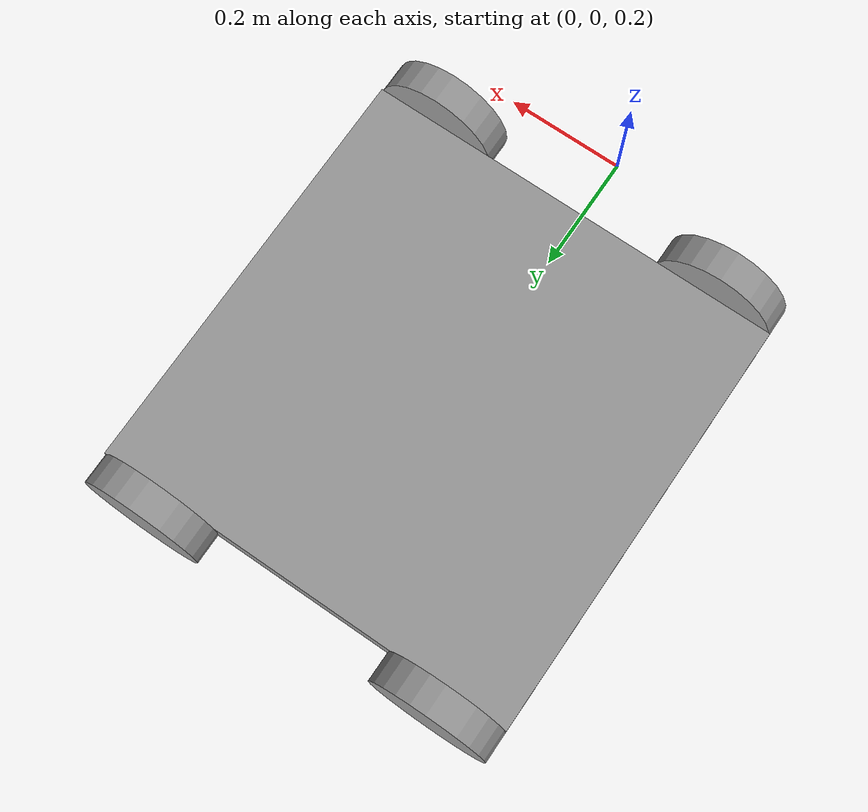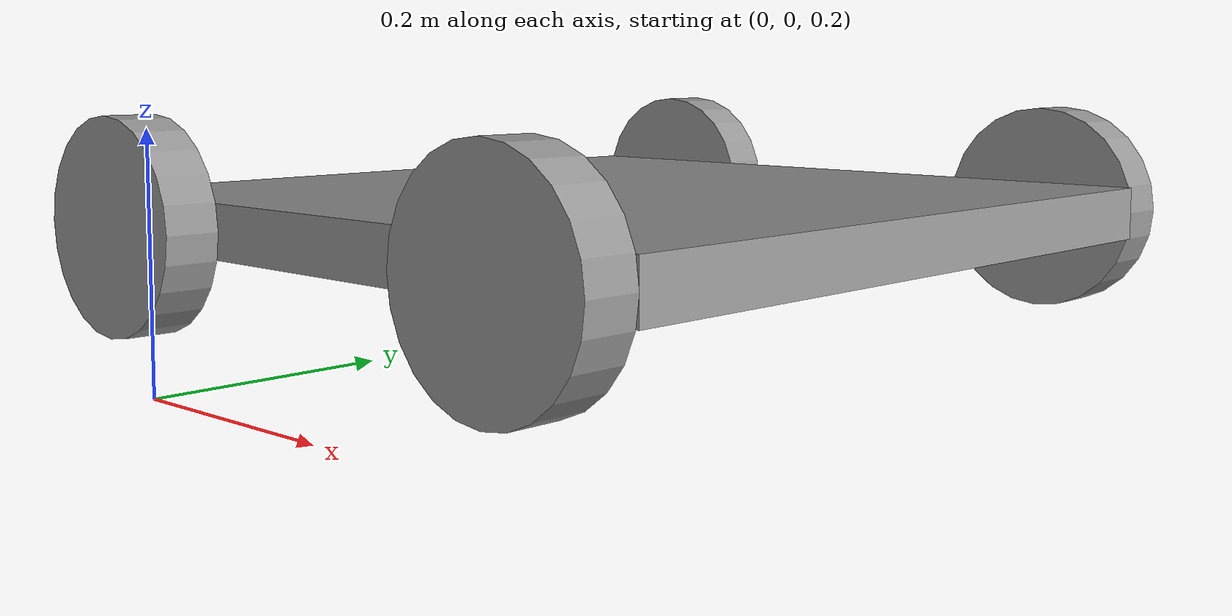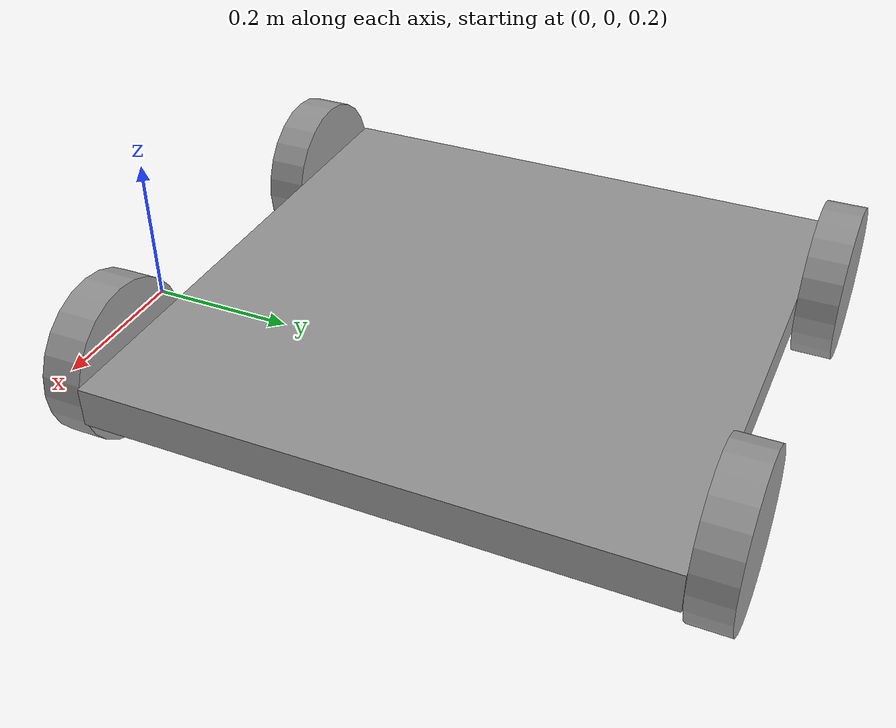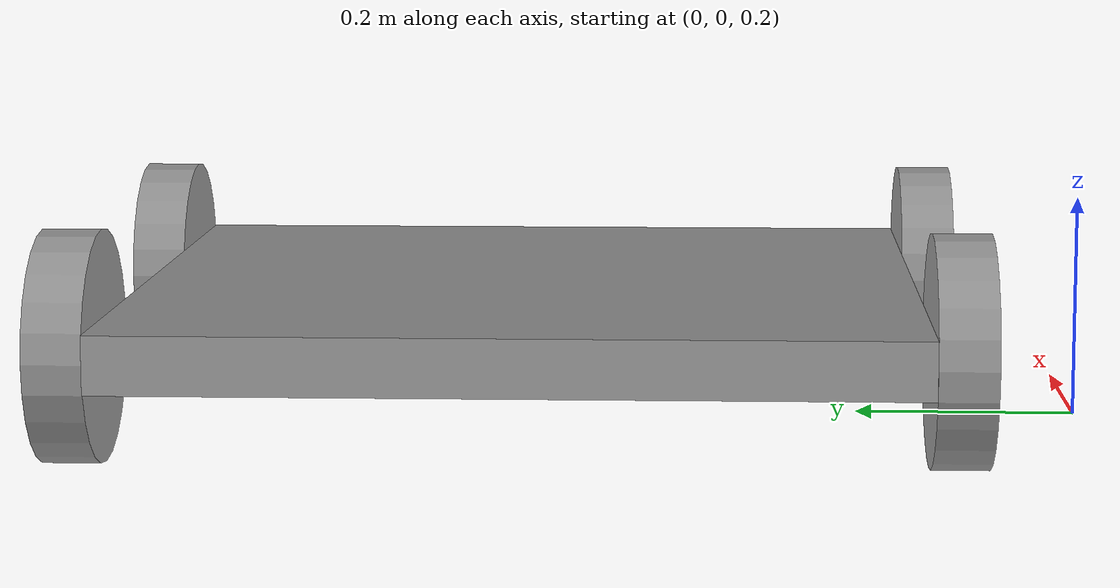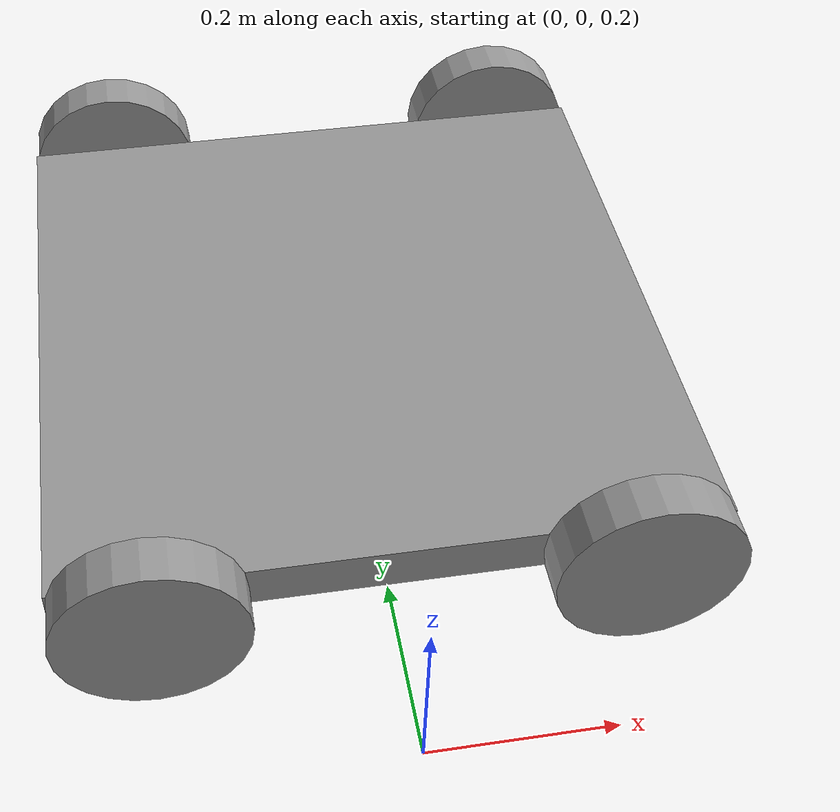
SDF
<?xml version='1.0'?>
<sdf version='1.6'>
  <model name='Robot'>
    <link name='link_2'>
      <inertial>
        <mass>1</mass>
        <inertia>
          <ixx>0.166667</ixx>
          <ixy>0</ixy>
          <ixz>0</ixz>
          <iyy>0.166667</iyy>
          <iyz>0</iyz>
          <izz>0.166667</izz>
        </inertia>
        <pose frame=''>0 0 0 0 -0 0</pose>
      </inertial>
      <pose frame=''>0 0.5 0.3 0 -0 0</pose>
      <gravity>1</gravity>
      <self_collide>0</self_collide>
      <kinematic>0</kinematic>
      <enable_wind>0</enable_wind>
      <visual name='visual'>
        <pose frame=''>0 0 0 0 -0 0</pose>
        <geometry>
          <box>
            <size>0.7 0.7 0.05</size>
          </box>
        </geometry>
        <material>
          <lighting>1</lighting>
          <script>
            <uri>file://media/materials/scripts/gazebo.material</uri>
            <name>Gazebo/Grey</name>
          </script>
          <shader type='vertex'>
            <normal_map>__default__</normal_map>
          </shader>
          <ambient>0.3 0.3 0.3 1</ambient>
          <diffuse>0.7 0.7 0.7 1</diffuse>
          <specular>0.01 0.01 0.01 1</specular>
          <emissive>0 0 0 1</emissive>
        </material>
        <transparency>0</transparency>
        <cast_shadows>1</cast_shadows>
      </visual>
      <collision name='collision'>
        <laser_retro>0</laser_retro>
        <max_contacts>10</max_contacts>
        <pose frame=''>0 0 0 0 -0 0</pose>
        <geometry>
          <box>
            <size>0.7 0.7 0.05</size>
          </box>
        </geometry>
        <surface>
          <friction>
            <ode>
              <mu>1</mu>
              <mu2>1</mu2>
              <fdir1>0 0 0</fdir1>
              <slip1>0</slip1>
              <slip2>0</slip2>
            </ode>
            <torsional>
              <coefficient>1</coefficient>
              <patch_radius>0</patch_radius>
              <surface_radius>0</surface_radius>
              <use_patch_radius>1</use_patch_radius>
              <ode>
                <slip>0</slip>
              </ode>
            </torsional>
          </friction>
          <bounce>
            <restitution_coefficient>0</restitution_coefficient>
            <threshold>1e+06</threshold>
          </bounce>
          <contact>
            <collide_without_contact>0</collide_without_contact>
            <collide_without_contact_bitmask>1</collide_without_contact_bitmask>
            <collide_bitmask>1</collide_bitmask>
            <ode>
              <soft_cfm>0</soft_cfm>
              <soft_erp>0.2</soft_erp>
              <kp>1e+13</kp>
              <kd>1</kd>
              <max_vel>0.01</max_vel>
              <min_depth>0</min_depth>
            </ode>
            <bullet>
              <split_impulse>1</split_impulse>
              <split_impulse_penetration_threshold>-0.01</split_impulse_penetration_threshold>
              <soft_cfm>0</soft_cfm>
              <soft_erp>0.2</soft_erp>
              <kp>1e+13</kp>
              <kd>1</kd>
            </bullet>
          </contact>
        </surface>
      </collision>
    </link>
    <link name='link_0'>
      <inertial>
        <mass>1</mass>
        <inertia>
          <ixx>0.145833</ixx>
          <ixy>0</ixy>
          <ixz>0</ixz>
          <iyy>0.145833</iyy>
          <iyz>0</iyz>
          <izz>0.125</izz>
        </inertia>
        <pose frame=''>0 0 0 0 -0 0</pose>
      </inertial>
      <pose frame=''>-0.250189 0.875048 0.300006 8e-06 -0 0.000261</pose>
      <gravity>1</gravity>
      <self_collide>0</self_collide>
      <kinematic>0</kinematic>
      <enable_wind>0</enable_wind>
      <visual name='visual'>
        <pose frame=''>0 0 0 1.571 -0 0</pose>
        <geometry>
          <cylinder>
            <radius>0.1</radius>
            <length>0.05</length>
          </cylinder>
        </geometry>
        <material>
          <lighting>1</lighting>
          <script>
            <uri>file://media/materials/scripts/gazebo.material</uri>
            <name>Gazebo/Grey</name>
          </script>
          <shader type='vertex'>
            <normal_map>__default__</normal_map>
          </shader>
          <ambient>0.3 0.3 0.3 1</ambient>
          <diffuse>0.7 0.7 0.7 1</diffuse>
          <specular>0.01 0.01 0.01 1</specular>
          <emissive>0 0 0 1</emissive>
        </material>
        <transparency>0</transparency>
        <cast_shadows>1</cast_shadows>
      </visual>
      <collision name='collision'>
        <laser_retro>0</laser_retro>
        <max_contacts>10</max_contacts>
        <pose frame=''>0 0 0 1.571 -0 0</pose>
        <geometry>
          <cylinder>
            <radius>0.1</radius>
            <length>0.05</length>
          </cylinder>
        </geometry>
        <surface>
          <friction>
            <ode>
              <mu>1</mu>
              <mu2>1</mu2>
              <fdir1>0 0 0</fdir1>
              <slip1>0</slip1>
              <slip2>0</slip2>
            </ode>
            <torsional>
              <coefficient>1</coefficient>
              <patch_radius>0</patch_radius>
              <surface_radius>0</surface_radius>
              <use_patch_radius>1</use_patch_radius>
              <ode>
                <slip>0</slip>
              </ode>
            </torsional>
          </friction>
          <bounce>
            <restitution_coefficient>0</restitution_coefficient>
            <threshold>1e+06</threshold>
          </bounce>
          <contact>
            <collide_without_contact>0</collide_without_contact>
            <collide_without_contact_bitmask>1</collide_without_contact_bitmask>
            <collide_bitmask>1</collide_bitmask>
            <ode>
              <soft_cfm>0</soft_cfm>
              <soft_erp>0.2</soft_erp>
              <kp>1e+13</kp>
              <kd>1</kd>
              <max_vel>0.01</max_vel>
              <min_depth>0</min_depth>
            </ode>
            <bullet>
              <split_impulse>1</split_impulse>
              <split_impulse_penetration_threshold>-0.01</split_impulse_penetration_threshold>
              <soft_cfm>0</soft_cfm>
              <soft_erp>0.2</soft_erp>
              <kp>1e+13</kp>
              <kd>1</kd>
            </bullet>
          </contact>
        </surface>
      </collision>
    </link>
    <link name='link_0_clone'>
      <inertial>
        <mass>1</mass>
        <inertia>
          <ixx>0.145833</ixx>
          <ixy>0</ixy>
          <ixz>0</ixz>
          <iyy>0.145833</iyy>
          <iyz>0</iyz>
          <izz>0.125</izz>
        </inertia>
        <pose frame=''>0 0 0 0 -0 0</pose>
      </inertial>
      <pose frame=''>-0.249987 0.124796 0.3 1.6e-05 -0 0.000522</pose>
      <gravity>1</gravity>
      <self_collide>0</self_collide>
      <kinematic>0</kinematic>
      <enable_wind>0</enable_wind>
      <visual name='visual'>
        <pose frame=''>0 0 0 1.571 -0 0</pose>
        <geometry>
          <cylinder>
            <radius>0.1</radius>
            <length>0.05</length>
          </cylinder>
        </geometry>
        <material>
          <lighting>1</lighting>
          <script>
            <uri>file://media/materials/scripts/gazebo.material</uri>
            <name>Gazebo/Grey</name>
          </script>
          <shader type='vertex'>
            <normal_map>__default__</normal_map>
          </shader>
          <ambient>0.3 0.3 0.3 1</ambient>
          <diffuse>0.7 0.7 0.7 1</diffuse>
          <specular>0.01 0.01 0.01 1</specular>
          <emissive>0 0 0 1</emissive>
        </material>
        <transparency>0</transparency>
        <cast_shadows>1</cast_shadows>
      </visual>
      <collision name='collision'>
        <laser_retro>0</laser_retro>
        <max_contacts>10</max_contacts>
        <pose frame=''>0 0 0 1.571 -0 0</pose>
        <geometry>
          <cylinder>
            <radius>0.1</radius>
            <length>0.05</length>
          </cylinder>
        </geometry>
        <surface>
          <friction>
            <ode>
              <mu>1</mu>
              <mu2>1</mu2>
              <fdir1>0 0 0</fdir1>
              <slip1>0</slip1>
              <slip2>0</slip2>
            </ode>
            <torsional>
              <coefficient>1</coefficient>
              <patch_radius>0</patch_radius>
              <surface_radius>0</surface_radius>
              <use_patch_radius>1</use_patch_radius>
              <ode>
                <slip>0</slip>
              </ode>
            </torsional>
          </friction>
          <bounce>
            <restitution_coefficient>0</restitution_coefficient>
            <threshold>1e+06</threshold>
          </bounce>
          <contact>
            <collide_without_contact>0</collide_without_contact>
            <collide_without_contact_bitmask>1</collide_without_contact_bitmask>
            <collide_bitmask>1</collide_bitmask>
            <ode>
              <soft_cfm>0</soft_cfm>
              <soft_erp>0.2</soft_erp>
              <kp>1e+13</kp>
              <kd>1</kd>
              <max_vel>0.01</max_vel>
              <min_depth>0</min_depth>
            </ode>
            <bullet>
              <split_impulse>1</split_impulse>
              <split_impulse_penetration_threshold>-0.01</split_impulse_penetration_threshold>
              <soft_cfm>0</soft_cfm>
              <soft_erp>0.2</soft_erp>
              <kp>1e+13</kp>
              <kd>1</kd>
            </bullet>
          </contact>
        </surface>
      </collision>
    </link>
    <link name='link_0_clone_0'>
      <inertial>
        <mass>1</mass>
        <inertia>
          <ixx>0.145833</ixx>
          <ixy>0</ixy>
          <ixz>0</ixz>
          <iyy>0.145833</iyy>
          <iyz>0</iyz>
          <izz>0.125</izz>
        </inertia>
        <pose frame=''>0 0 0 0 -0 0</pose>
      </inertial>
      <pose frame=''>0.249987 0.875204 0.3 1.6e-05 -0 0.000522</pose>
      <gravity>1</gravity>
      <self_collide>0</self_collide>
      <kinematic>0</kinematic>
      <enable_wind>0</enable_wind>
      <visual name='visual'>
        <pose frame=''>0 0 0 1.571 -0 0</pose>
        <geometry>
          <cylinder>
            <radius>0.1</radius>
            <length>0.05</length>
          </cylinder>
        </geometry>
        <material>
          <lighting>1</lighting>
          <script>
            <uri>file://media/materials/scripts/gazebo.material</uri>
            <name>Gazebo/Grey</name>
          </script>
          <shader type='vertex'>
            <normal_map>__default__</normal_map>
          </shader>
          <ambient>0.3 0.3 0.3 1</ambient>
          <diffuse>0.7 0.7 0.7 1</diffuse>
          <specular>0.01 0.01 0.01 1</specular>
          <emissive>0 0 0 1</emissive>
        </material>
        <transparency>0</transparency>
        <cast_shadows>1</cast_shadows>
      </visual>
      <collision name='collision'>
        <laser_retro>0</laser_retro>
        <max_contacts>10</max_contacts>
        <pose frame=''>0 0 0 1.571 -0 0</pose>
        <geometry>
          <cylinder>
            <radius>0.1</radius>
            <length>0.05</length>
          </cylinder>
        </geometry>
        <surface>
          <friction>
            <ode>
              <mu>1</mu>
              <mu2>1</mu2>
              <fdir1>0 0 0</fdir1>
              <slip1>0</slip1>
              <slip2>0</slip2>
            </ode>
            <torsional>
              <coefficient>1</coefficient>
              <patch_radius>0</patch_radius>
              <surface_radius>0</surface_radius>
              <use_patch_radius>1</use_patch_radius>
              <ode>
                <slip>0</slip>
              </ode>
            </torsional>
          </friction>
          <bounce>
            <restitution_coefficient>0</restitution_coefficient>
            <threshold>1e+06</threshold>
          </bounce>
          <contact>
            <collide_without_contact>0</collide_without_contact>
            <collide_without_contact_bitmask>1</collide_without_contact_bitmask>
            <collide_bitmask>1</collide_bitmask>
            <ode>
              <soft_cfm>0</soft_cfm>
              <soft_erp>0.2</soft_erp>
              <kp>1e+13</kp>
              <kd>1</kd>
              <max_vel>0.01</max_vel>
              <min_depth>0</min_depth>
            </ode>
            <bullet>
              <split_impulse>1</split_impulse>
              <split_impulse_penetration_threshold>-0.01</split_impulse_penetration_threshold>
              <soft_cfm>0</soft_cfm>
              <soft_erp>0.2</soft_erp>
              <kp>1e+13</kp>
              <kd>1</kd>
            </bullet>
          </contact>
        </surface>
      </collision>
    </link>
    <link name='link_0_clone_0_clone'>
      <inertial>
        <mass>1</mass>
        <inertia>
          <ixx>0.145833</ixx>
          <ixy>0</ixy>
          <ixz>0</ixz>
          <iyy>0.145833</iyy>
          <iyz>0</iyz>
          <izz>0.125</izz>
        </inertia>
        <pose frame=''>0 0 0 0 -0 0</pose>
      </inertial>
      <pose frame=''>0.250176 0.124899 0.3 2.4e-05 -0 0.000783</pose>
      <gravity>1</gravity>
      <self_collide>0</self_collide>
      <kinematic>0</kinematic>
      <enable_wind>0</enable_wind>
      <visual name='visual'>
        <pose frame=''>0 0 0 1.571 -0 0</pose>
        <geometry>
          <cylinder>
            <radius>0.1</radius>
            <length>0.05</length>
          </cylinder>
        </geometry>
        <material>
          <lighting>1</lighting>
          <script>
            <uri>file://media/materials/scripts/gazebo.material</uri>
            <name>Gazebo/Grey</name>
          </script>
          <shader type='vertex'>
            <normal_map>__default__</normal_map>
          </shader>
          <ambient>0.3 0.3 0.3 1</ambient>
          <diffuse>0.7 0.7 0.7 1</diffuse>
          <specular>0.01 0.01 0.01 1</specular>
          <emissive>0 0 0 1</emissive>
        </material>
        <transparency>0</transparency>
        <cast_shadows>1</cast_shadows>
      </visual>
      <collision name='collision'>
        <laser_retro>0</laser_retro>
        <max_contacts>10</max_contacts>
        <pose frame=''>0 0 0 1.571 -0 0</pose>
        <geometry>
          <cylinder>
            <radius>0.1</radius>
            <length>0.05</length>
          </cylinder>
        </geometry>
        <surface>
          <friction>
            <ode>
              <mu>1</mu>
              <mu2>1</mu2>
              <fdir1>0 0 0</fdir1>
              <slip1>0</slip1>
              <slip2>0</slip2>
            </ode>
            <torsional>
              <coefficient>1</coefficient>
              <patch_radius>0</patch_radius>
              <surface_radius>0</surface_radius>
              <use_patch_radius>1</use_patch_radius>
              <ode>
                <slip>0</slip>
              </ode>
            </torsional>
          </friction>
          <bounce>
            <restitution_coefficient>0</restitution_coefficient>
            <threshold>1e+06</threshold>
          </bounce>
          <contact>
            <collide_without_contact>0</collide_without_contact>
            <collide_without_contact_bitmask>1</collide_without_contact_bitmask>
            <collide_bitmask>1</collide_bitmask>
            <ode>
              <soft_cfm>0</soft_cfm>
              <soft_erp>0.2</soft_erp>
              <kp>1e+13</kp>
              <kd>1</kd>
              <max_vel>0.01</max_vel>
              <min_depth>0</min_depth>
            </ode>
            <bullet>
              <split_impulse>1</split_impulse>
              <split_impulse_penetration_threshold>-0.01</split_impulse_penetration_threshold>
              <soft_cfm>0</soft_cfm>
              <soft_erp>0.2</soft_erp>
              <kp>1e+13</kp>
              <kd>1</kd>
            </bullet>
          </contact>
        </surface>
      </collision>
    </link>
    <joint name='link_2_JOINT_10' type='revolute'>
      <parent>link_2</parent>
      <child>link_0_clone</child>
      <pose frame=''>0 0 0 0 -0 0</pose>
      <axis>
        <xyz>0 0 1</xyz>
        <use_parent_model_frame>0</use_parent_model_frame>
        <limit>
          <lower>-1.79769e+308</lower>
          <upper>1.79769e+308</upper>
          <effort>-1</effort>
          <velocity>-1</velocity>
        </limit>
        <dynamics>
          <spring_reference>0</spring_reference>
          <spring_stiffness>0</spring_stiffness>
          <damping>0</damping>
        </dynamics>
      </axis>
      <physics>
        <ode>
          <limit>
            <cfm>0</cfm>
            <erp>0.2</erp>
          </limit>
          <suspension>
            <cfm>0</cfm>
            <erp>0.2</erp>
          </suspension>
        </ode>
      </physics>
    </joint>
    <joint name='link_2_JOINT_1' type='revolute'>
      <parent>link_2</parent>
      <child>link_0</child>
      <pose frame=''>0 0 0 0 -0 0</pose>
      <axis>
        <xyz>0 0 1</xyz>
        <use_parent_model_frame>0</use_parent_model_frame>
        <limit>
          <lower>-1.79769e+308</lower>
          <upper>1.79769e+308</upper>
          <effort>-1</effort>
          <velocity>-1</velocity>
        </limit>
        <dynamics>
          <spring_reference>0</spring_reference>
          <spring_stiffness>0</spring_stiffness>
          <damping>0</damping>
          <friction>0</friction>
        </dynamics>
      </axis>
      <physics>
        <ode>
          <limit>
            <cfm>0</cfm>
            <erp>0.2</erp>
          </limit>
          <suspension>
            <cfm>0</cfm>
            <erp>0.2</erp>
          </suspension>
        </ode>
      </physics>
    </joint>
    <joint name='link_2_JOINT_8' type='revolute'>
      <parent>link_2</parent>
      <child>link_0_clone_0</child>
      <pose frame=''>0 0 0 0 -0 0</pose>
      <axis>
        <xyz>0 0 1</xyz>
        <use_parent_model_frame>0</use_parent_model_frame>
        <limit>
          <lower>-1.79769e+308</lower>
          <upper>1.79769e+308</upper>
          <effort>-1</effort>
          <velocity>-1</velocity>
        </limit>
        <dynamics>
          <spring_reference>0</spring_reference>
          <spring_stiffness>0</spring_stiffness>
          <damping>0</damping>
        </dynamics>
      </axis>
      <physics>
        <ode>
          <limit>
            <cfm>0</cfm>
            <erp>0.2</erp>
          </limit>
          <suspension>
            <cfm>0</cfm>
            <erp>0.2</erp>
          </suspension>
        </ode>
      </physics>
    </joint>
    <joint name='link_2_JOINT_9' type='revolute'>
      <parent>link_2</parent>
      <child>link_0_clone_0_clone</child>
      <pose frame=''>0 0 0 0 -0 0</pose>
      <axis>
        <xyz>0 0 1</xyz>
        <use_parent_model_frame>0</use_parent_model_frame>
        <limit>
          <lower>-1.79769e+308</lower>
          <upper>1.79769e+308</upper>
          <effort>-1</effort>
          <velocity>-1</velocity>
        </limit>
        <dynamics>
          <spring_reference>0</spring_reference>
          <spring_stiffness>0</spring_stiffness>
          <damping>0</damping>
        </dynamics>
      </axis>
      <physics>
        <ode>
          <limit>
            <cfm>0</cfm>
            <erp>0.2</erp>
          </limit>
          <suspension>
            <cfm>0</cfm>
            <erp>0.2</erp>
          </suspension>
        </ode>
      </physics>
    </joint>
    <static>0</static>
    <allow_auto_disable>1</allow_auto_disable>
  </model>
</sdf>
